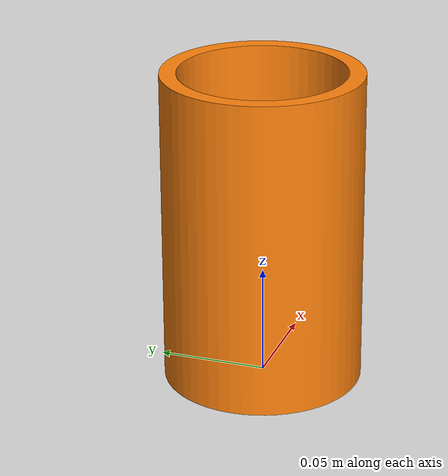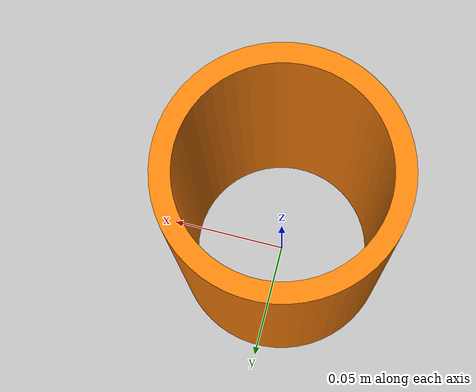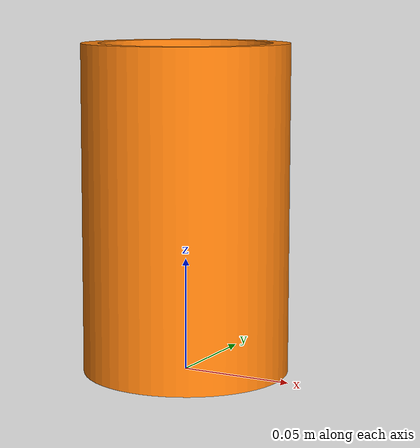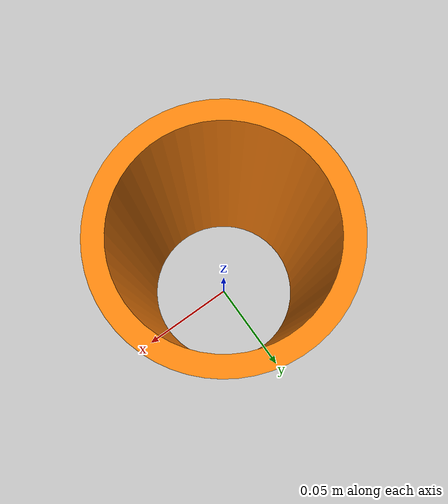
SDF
<?xml version="1.0" ?>
<sdf version="1.5">
  <model name="HollowCylinder">
      <pose>0 0 0 0 0 0</pose>
      <link name="base_link">
       <inertial>
          <mass>.15</mass>
        </inertial>
        <collision name="collision">
          <geometry>
            <mesh>
              <uri>model://HollowCylinder/collision/HollowCylinder.stl</uri>
              <scale>0.001 0.001 0.001</scale>
            </mesh>
          </geometry>
        </collision>
        <visual name="visual">
          <geometry>
            <mesh>
              <uri>model://HollowCylinder/visual/HollowCylinder.dae</uri>
              <scale>0.001 0.001 0.001</scale>
            </mesh>
          </geometry>
          <material>
            <ambient>1 0.5088 0.0468 1</ambient>
            <diffuse>1 0.5088 0.0468 1</diffuse>
          </material>
        </visual>
    </link>

  </model>
</sdf>
